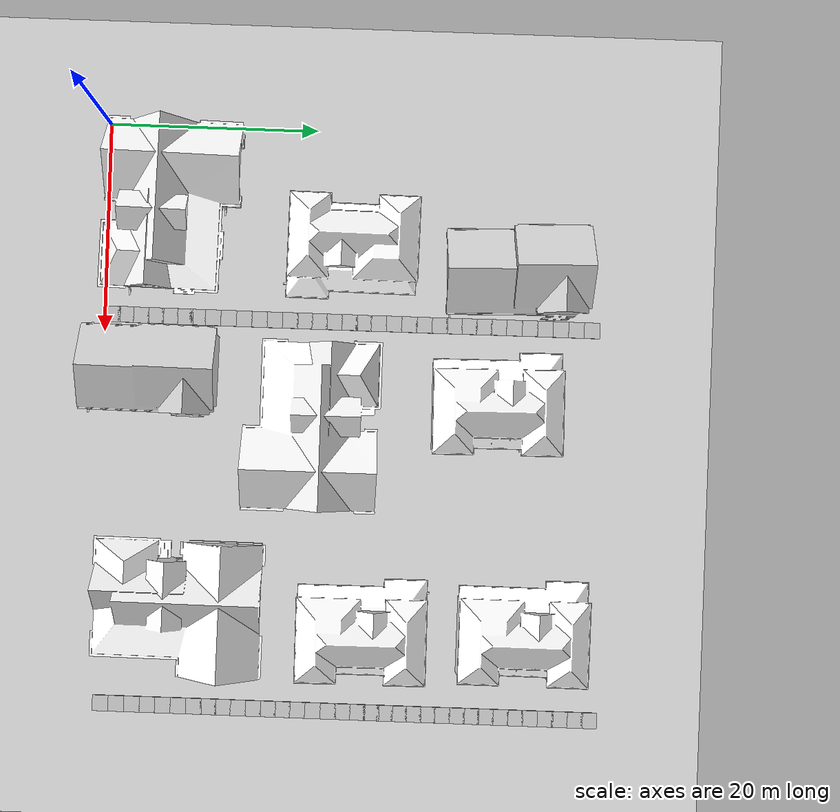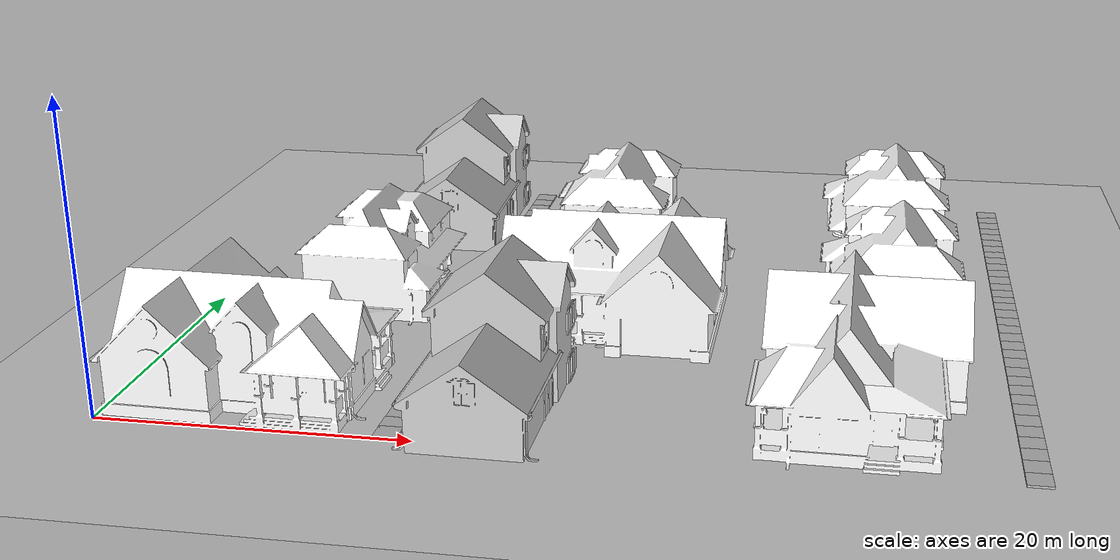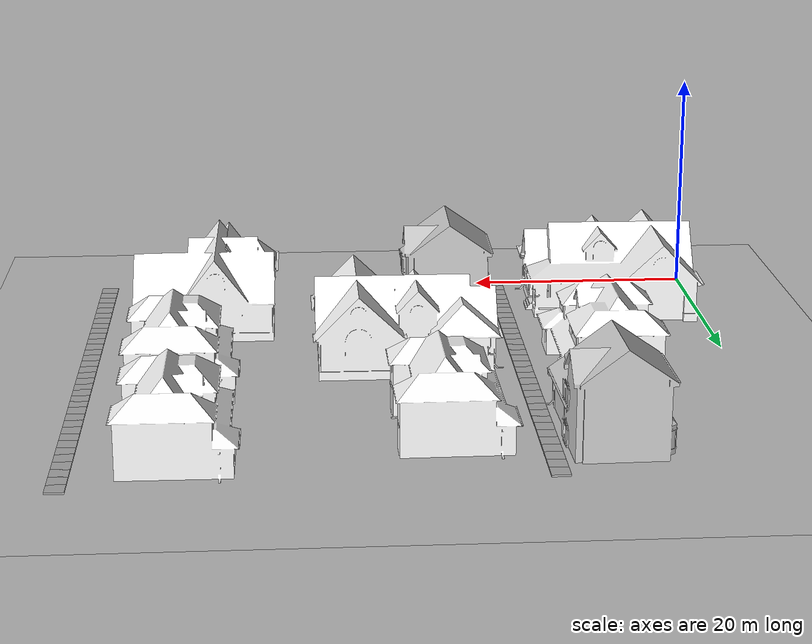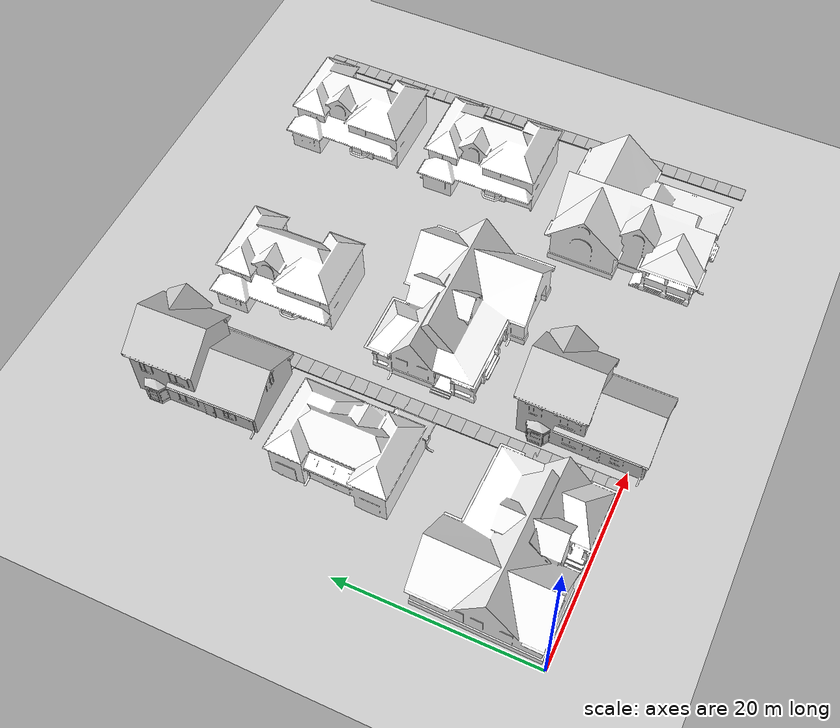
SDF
<sdf version="1.6">
 <world name="default">
  <model name="ground_plane">
   <pose>50 50 0 0 -0 0</pose>
   <static>1</static>
   <link name="link">
    <collision name="collision">
     <geometry><plane><normal>0 0 1</normal><size>100 100</size></plane></geometry>
     <surface>
      <contact><collide_bitmask>65535</collide_bitmask></contact>
      <friction><ode><mu>100</mu><mu2>50</mu2></ode></friction>
     </surface>
    </collision>
    <visual name="visual">
     <cast_shadows>0</cast_shadows>
     <geometry><plane><normal>0 0 1</normal><size>100 100</size></plane></geometry>
     <material>
      <script><uri>file://media/materials/scripts/gazebo.material</uri><name>Gazebo/Grey</name></script>
     </material>
    </visual>
   </link>
  </model>
  <model name="House 1">
   <static>1</static>
   <link name="link">
    <collision name="collision">
     <geometry><mesh><uri>model://house_1/meshes/house_1.dae</uri><scale>1.5 1.5 1.5</scale></mesh></geometry>
    </collision>
    <visual name="visual">
     <geometry><mesh><uri>model://house_1/meshes/house_1.dae</uri><scale>1.5 1.5 1.5</scale></mesh></geometry>
     <material>
      <script>
       <uri>model://house_1/materials/scripts</uri>
       <uri>model://house_1/materials/textures</uri>
       <name>House_1/Diffuse</name>
      </script>
      <shader type="normal_map_tangent_space"><normal_map>House_1_Normal.png</normal_map></shader>
     </material>
    </visual>
   </link>
   <pose>7.85395 6.03702 0 0 -0 3.12127</pose>
  </model>
  <model name="walkway_metal_straight">
   <static>1</static>
   <link name="link">
    <collision name="collision">
     <pose>0 0.762 0.076075 0 -0 0</pose>
     <geometry><box><size>1.524 1.524 0.15215</size></box></geometry>
    </collision>
    <visual name="visual">
     <geometry>
      <mesh><scale>0.001 0.001 0.001</scale><uri>model://walkway_metal_straight/meshes/mesh.obj</uri></mesh>
     </geometry>
    </visual>
   </link>
   <pose>18.2825 -0.072933 0 0 -0 0</pose>
  </model>
  <model name="walkway_metal_straight_0">
   <static>1</static>
   <link name="link">
    <collision name="collision">
     <pose>0 0.762 0.076075 0 -0 0</pose>
     <geometry><box><size>1.524 1.524 0.15215</size></box></geometry>
    </collision>
    <visual name="visual">
     <geometry>
      <mesh><scale>0.001 0.001 0.001</scale><uri>model://walkway_metal_straight/meshes/mesh.obj</uri></mesh>
     </geometry>
    </visual>
   </link>
   <pose>18.2758 1.21264 0 0 -0 0</pose>
  </model>
  <model name="walkway_metal_straight_1">
   <static>1</static>
   <link name="link">
    <collision name="collision">
     <pose>0 0.762 0.076075 0 -0 0</pose>
     <geometry><box><size>1.524 1.524 0.15215</size></box></geometry>
    </collision>
    <visual name="visual">
     <geometry>
      <mesh><scale>0.001 0.001 0.001</scale><uri>model://walkway_metal_straight/meshes/mesh.obj</uri></mesh>
     </geometry>
    </visual>
   </link>
   <pose>18.3018 2.69775 0 0 -0 0</pose>
  </model>
  <model name="walkway_metal_straight_2">
   <static>1</static>
   <link name="link">
    <collision name="collision">
     <pose>0 0.762 0.076075 0 -0 0</pose>
     <geometry><box><size>1.524 1.524 0.15215</size></box></geometry>
    </collision>
    <visual name="visual">
     <geometry>
      <mesh><scale>0.001 0.001 0.001</scale><uri>model://walkway_metal_straight/meshes/mesh.obj</uri></mesh>
     </geometry>
    </visual>
   </link>
   <pose>18.3024 4.11116 0 0 -0 0</pose>
  </model>
  <model name="walkway_metal_straight_3">
   <static>1</static>
   <link name="link">
    <collision name="collision">
     <pose>0 0.762 0.076075 0 -0 0</pose>
     <geometry><box><size>1.524 1.524 0.15215</size></box></geometry>
    </collision>
    <visual name="visual">
     <geometry>
      <mesh><scale>0.001 0.001 0.001</scale><uri>model://walkway_metal_straight/meshes/mesh.obj</uri></mesh>
     </geometry>
    </visual>
   </link>
   <pose>18.3048 5.48533 0 0 -0 0</pose>
  </model>
  <model name="walkway_metal_straight_4">
   <static>1</static>
   <link name="link">
    <collision name="collision">
     <pose>0 0.762 0.076075 0 -0 0</pose>
     <geometry><box><size>1.524 1.524 0.15215</size></box></geometry>
    </collision>
    <visual name="visual">
     <geometry>
      <mesh><scale>0.001 0.001 0.001</scale><uri>model://walkway_metal_straight/meshes/mesh.obj</uri></mesh>
     </geometry>
    </visual>
   </link>
   <pose>18.3241 6.94851 0 0 -0 0</pose>
  </model>
  <model name="walkway_metal_straight_5">
   <static>1</static>
   <link name="link">
    <collision name="collision">
     <pose>0 0.762 0.076075 0 -0 0</pose>
     <geometry><box><size>1.524 1.524 0.15215</size></box></geometry>
    </collision>
    <visual name="visual">
     <geometry>
      <mesh><scale>0.001 0.001 0.001</scale><uri>model://walkway_metal_straight/meshes/mesh.obj</uri></mesh>
     </geometry>
    </visual>
   </link>
   <pose>18.3171 8.13981 0 0 -0 0</pose>
  </model>
  <model name="walkway_metal_straight_6">
   <static>1</static>
   <link name="link">
    <collision name="collision">
     <pose>0 0.762 0.076075 0 -0 0</pose>
     <geometry><box><size>1.524 1.524 0.15215</size></box></geometry>
    </collision>
    <visual name="visual">
     <geometry>
      <mesh><scale>0.001 0.001 0.001</scale><uri>model://walkway_metal_straight/meshes/mesh.obj</uri></mesh>
     </geometry>
    </visual>
   </link>
   <pose>18.3157 9.63545 0 0 -0 0</pose>
  </model>
  <model name="walkway_metal_straight_7">
   <static>1</static>
   <link name="link">
    <collision name="collision">
     <pose>0 0.762 0.076075 0 -0 0</pose>
     <geometry><box><size>1.524 1.524 0.15215</size></box></geometry>
    </collision>
    <visual name="visual">
     <geometry>
      <mesh><scale>0.001 0.001 0.001</scale><uri>model://walkway_metal_straight/meshes/mesh.obj</uri></mesh>
     </geometry>
    </visual>
   </link>
   <pose>18.3179 11.1532 0 0 -0 0</pose>
  </model>
  <model name="walkway_metal_straight_8">
   <static>1</static>
   <link name="link">
    <collision name="collision">
     <pose>0 0.762 0.076075 0 -0 0</pose>
     <geometry><box><size>1.524 1.524 0.15215</size></box></geometry>
    </collision>
    <visual name="visual">
     <geometry>
      <mesh><scale>0.001 0.001 0.001</scale><uri>model://walkway_metal_straight/meshes/mesh.obj</uri></mesh>
     </geometry>
    </visual>
   </link>
   <pose>18.324 12.6444 0 0 -0 0</pose>
  </model>
  <model name="walkway_metal_straight_9">
   <static>1</static>
   <link name="link">
    <collision name="collision">
     <pose>0 0.762 0.076075 0 -0 0</pose>
     <geometry><box><size>1.524 1.524 0.15215</size></box></geometry>
    </collision>
    <visual name="visual">
     <geometry>
      <mesh><scale>0.001 0.001 0.001</scale><uri>model://walkway_metal_straight/meshes/mesh.obj</uri></mesh>
     </geometry>
    </visual>
   </link>
   <pose>18.3296 14.1195 0 0 -0 0</pose>
  </model>
  <model name="walkway_metal_straight_10">
   <static>1</static>
   <link name="link">
    <collision name="collision">
     <pose>0 0.762 0.076075 0 -0 0</pose>
     <geometry><box><size>1.524 1.524 0.15215</size></box></geometry>
    </collision>
    <visual name="visual">
     <geometry>
      <mesh><scale>0.001 0.001 0.001</scale><uri>model://walkway_metal_straight/meshes/mesh.obj</uri></mesh>
     </geometry>
    </visual>
   </link>
   <pose>18.3353 15.595 0 0 -0 0</pose>
  </model>
  <model name="walkway_metal_straight_11">
   <static>1</static>
   <link name="link">
    <collision name="collision">
     <pose>0 0.762 0.076075 0 -0 0</pose>
     <geometry><box><size>1.524 1.524 0.15215</size></box></geometry>
    </collision>
    <visual name="visual">
     <geometry>
      <mesh><scale>0.001 0.001 0.001</scale><uri>model://walkway_metal_straight/meshes/mesh.obj</uri></mesh>
     </geometry>
    </visual>
   </link>
   <pose>18.329 17.1047 0 0 -0 0</pose>
  </model>
  <model name="walkway_metal_straight_12">
   <static>1</static>
   <link name="link">
    <collision name="collision">
     <pose>0 0.762 0.076075 0 -0 0</pose>
     <geometry><box><size>1.524 1.524 0.15215</size></box></geometry>
    </collision>
    <visual name="visual">
     <geometry>
      <mesh><scale>0.001 0.001 0.001</scale><uri>model://walkway_metal_straight/meshes/mesh.obj</uri></mesh>
     </geometry>
    </visual>
   </link>
   <pose>18.3332 18.4995 0 0 -0 0</pose>
  </model>
  <model name="walkway_metal_straight_13">
   <static>1</static>
   <link name="link">
    <collision name="collision">
     <pose>0 0.762 0.076075 0 -0 0</pose>
     <geometry><box><size>1.524 1.524 0.15215</size></box></geometry>
    </collision>
    <visual name="visual">
     <geometry>
      <mesh><scale>0.001 0.001 0.001</scale><uri>model://walkway_metal_straight/meshes/mesh.obj</uri></mesh>
     </geometry>
    </visual>
   </link>
   <pose>18.338 19.9107 0 0 -0 0</pose>
  </model>
  <model name="walkway_metal_straight_14">
   <static>1</static>
   <link name="link">
    <collision name="collision">
     <pose>0 0.762 0.076075 0 -0 0</pose>
     <geometry><box><size>1.524 1.524 0.15215</size></box></geometry>
    </collision>
    <visual name="visual">
     <geometry>
      <mesh><scale>0.001 0.001 0.001</scale><uri>model://walkway_metal_straight/meshes/mesh.obj</uri></mesh>
     </geometry>
    </visual>
   </link>
   <pose>18.3372 21.3551 0 0 -0 0</pose>
  </model>
  <model name="walkway_metal_straight_15">
   <static>1</static>
   <link name="link">
    <collision name="collision">
     <pose>0 0.762 0.076075 0 -0 0</pose>
     <geometry><box><size>1.524 1.524 0.15215</size></box></geometry>
    </collision>
    <visual name="visual">
     <geometry>
      <mesh><scale>0.001 0.001 0.001</scale><uri>model://walkway_metal_straight/meshes/mesh.obj</uri></mesh>
     </geometry>
    </visual>
   </link>
   <pose>18.3337 22.8474 0 0 -0 0</pose>
  </model>
  <model name="walkway_metal_straight_16">
   <static>1</static>
   <link name="link">
    <collision name="collision">
     <pose>0 0.762 0.076075 0 -0 0</pose>
     <geometry><box><size>1.524 1.524 0.15215</size></box></geometry>
    </collision>
    <visual name="visual">
     <geometry>
      <mesh><scale>0.001 0.001 0.001</scale><uri>model://walkway_metal_straight/meshes/mesh.obj</uri></mesh>
     </geometry>
    </visual>
   </link>
   <pose>18.3477 24.1951 0 0 -0 0</pose>
  </model>
  <model name="walkway_metal_straight_17">
   <static>1</static>
   <link name="link">
    <collision name="collision">
     <pose>0 0.762 0.076075 0 -0 0</pose>
     <geometry><box><size>1.524 1.524 0.15215</size></box></geometry>
    </collision>
    <visual name="visual">
     <geometry>
      <mesh><scale>0.001 0.001 0.001</scale><uri>model://walkway_metal_straight/meshes/mesh.obj</uri></mesh>
     </geometry>
    </visual>
   </link>
   <pose>18.345 25.6384 0 0 -0 0</pose>
  </model>
  <model name="walkway_metal_straight_18">
   <static>1</static>
   <link name="link">
    <collision name="collision">
     <pose>0 0.762 0.076075 0 -0 0</pose>
     <geometry><box><size>1.524 1.524 0.15215</size></box></geometry>
    </collision>
    <visual name="visual">
     <geometry>
      <mesh><scale>0.001 0.001 0.001</scale><uri>model://walkway_metal_straight/meshes/mesh.obj</uri></mesh>
     </geometry>
    </visual>
   </link>
   <pose>18.3364 27.1272 0 0 -0 0</pose>
  </model>
  <model name="walkway_metal_straight_19">
   <static>1</static>
   <link name="link">
    <collision name="collision">
     <pose>0 0.762 0.076075 0 -0 0</pose>
     <geometry><box><size>1.524 1.524 0.15215</size></box></geometry>
    </collision>
    <visual name="visual">
     <geometry>
      <mesh><scale>0.001 0.001 0.001</scale><uri>model://walkway_metal_straight/meshes/mesh.obj</uri></mesh>
     </geometry>
    </visual>
   </link>
   <pose>18.3402 28.6079 0 0 -0 0</pose>
  </model>
  <model name="walkway_metal_straight_20">
   <static>1</static>
   <link name="link">
    <collision name="collision">
     <pose>0 0.762 0.076075 0 -0 0</pose>
     <geometry><box><size>1.524 1.524 0.15215</size></box></geometry>
    </collision>
    <visual name="visual">
     <geometry>
      <mesh><scale>0.001 0.001 0.001</scale><uri>model://walkway_metal_straight/meshes/mesh.obj</uri></mesh>
     </geometry>
    </visual>
   </link>
   <pose>18.3445 30.0526 0 0 -0 0</pose>
  </model>
  <model name="walkway_metal_straight_21">
   <static>1</static>
   <link name="link">
    <collision name="collision">
     <pose>0 0.762 0.076075 0 -0 0</pose>
     <geometry><box><size>1.524 1.524 0.15215</size></box></geometry>
    </collision>
    <visual name="visual">
     <geometry>
      <mesh><scale>0.001 0.001 0.001</scale><uri>model://walkway_metal_straight/meshes/mesh.obj</uri></mesh>
     </geometry>
    </visual>
   </link>
   <pose>18.337 31.5447 0 0 -0 0</pose>
  </model>
  <model name="walkway_metal_straight_22">
   <static>1</static>
   <link name="link">
    <collision name="collision">
     <pose>0 0.762 0.076075 0 -0 0</pose>
     <geometry><box><size>1.524 1.524 0.15215</size></box></geometry>
    </collision>
    <visual name="visual">
     <geometry>
      <mesh><scale>0.001 0.001 0.001</scale><uri>model://walkway_metal_straight/meshes/mesh.obj</uri></mesh>
     </geometry>
    </visual>
   </link>
   <pose>18.3409 32.9529 0 0 -0 0</pose>
  </model>
  <model name="walkway_metal_straight_23">
   <static>1</static>
   <link name="link">
    <collision name="collision">
     <pose>0 0.762 0.076075 0 -0 0</pose>
     <geometry><box><size>1.524 1.524 0.15215</size></box></geometry>
    </collision>
    <visual name="visual">
     <geometry>
      <mesh><scale>0.001 0.001 0.001</scale><uri>model://walkway_metal_straight/meshes/mesh.obj</uri></mesh>
     </geometry>
    </visual>
   </link>
   <pose>18.3386 34.3966 0 0 -0 0</pose>
  </model>
  <model name="walkway_metal_straight_24">
   <static>1</static>
   <link name="link">
    <collision name="collision">
     <pose>0 0.762 0.076075 0 -0 0</pose>
     <geometry><box><size>1.524 1.524 0.15215</size></box></geometry>
    </collision>
    <visual name="visual">
     <geometry>
      <mesh><scale>0.001 0.001 0.001</scale><uri>model://walkway_metal_straight/meshes/mesh.obj</uri></mesh>
     </geometry>
    </visual>
   </link>
   <pose>18.3354 35.8409 0 0 -0 0</pose>
  </model>
  <model name="walkway_metal_straight_25">
   <static>1</static>
   <link name="link">
    <collision name="collision">
     <pose>0 0.762 0.076075 0 -0 0</pose>
     <geometry><box><size>1.524 1.524 0.15215</size></box></geometry>
    </collision>
    <visual name="visual">
     <geometry>
      <mesh><scale>0.001 0.001 0.001</scale><uri>model://walkway_metal_straight/meshes/mesh.obj</uri></mesh>
     </geometry>
    </visual>
   </link>
   <pose>18.3245 37.2528 0 0 -0 0</pose>
  </model>
  <model name="walkway_metal_straight_26">
   <static>1</static>
   <link name="link">
    <collision name="collision">
     <pose>0 0.762 0.076075 0 -0 0</pose>
     <geometry><box><size>1.524 1.524 0.15215</size></box></geometry>
    </collision>
    <visual name="visual">
     <geometry>
      <mesh><scale>0.001 0.001 0.001</scale><uri>model://walkway_metal_straight/meshes/mesh.obj</uri></mesh>
     </geometry>
    </visual>
   </link>
   <pose>18.3287 38.7686 0 0 -0 0</pose>
  </model>
  <model name="walkway_metal_straight_27">
   <static>1</static>
   <link name="link">
    <collision name="collision">
     <pose>0 0.762 0.076075 0 -0 0</pose>
     <geometry><box><size>1.524 1.524 0.15215</size></box></geometry>
    </collision>
    <visual name="visual">
     <geometry>
      <mesh><scale>0.001 0.001 0.001</scale><uri>model://walkway_metal_straight/meshes/mesh.obj</uri></mesh>
     </geometry>
    </visual>
   </link>
   <pose>18.3226 40.2752 0 0 -0 0</pose>
  </model>
  <model name="walkway_metal_straight_28">
   <static>1</static>
   <link name="link">
    <collision name="collision">
     <pose>0 0.762 0.076075 0 -0 0</pose>
     <geometry><box><size>1.524 1.524 0.15215</size></box></geometry>
    </collision>
    <visual name="visual">
     <geometry>
      <mesh><scale>0.001 0.001 0.001</scale><uri>model://walkway_metal_straight/meshes/mesh.obj</uri></mesh>
     </geometry>
    </visual>
   </link>
   <pose>18.3267 41.7464 0 0 -0 0</pose>
  </model>
  <model name="walkway_metal_straight_29">
   <static>1</static>
   <link name="link">
    <collision name="collision">
     <pose>0 0.762 0.076075 0 -0 0</pose>
     <geometry><box><size>1.524 1.524 0.15215</size></box></geometry>
    </collision>
    <visual name="visual">
     <geometry>
      <mesh><scale>0.001 0.001 0.001</scale><uri>model://walkway_metal_straight/meshes/mesh.obj</uri></mesh>
     </geometry>
    </visual>
   </link>
   <pose>18.331 43.2478 0 0 -0 0</pose>
  </model>
  <model name="walkway_metal_straight_30">
   <static>1</static>
   <link name="link">
    <collision name="collision">
     <pose>0 0.762 0.076075 0 -0 0</pose>
     <geometry><box><size>1.524 1.524 0.15215</size></box></geometry>
    </collision>
    <visual name="visual">
     <geometry>
      <mesh><scale>0.001 0.001 0.001</scale><uri>model://walkway_metal_straight/meshes/mesh.obj</uri></mesh>
     </geometry>
    </visual>
   </link>
   <pose>18.3351 44.7496 0 0 -0 0</pose>
  </model>
  <model name="walkway_metal_straight_31">
   <static>1</static>
   <link name="link">
    <collision name="collision">
     <pose>0 0.762 0.076075 0 -0 0</pose>
     <geometry><box><size>1.524 1.524 0.15215</size></box></geometry>
    </collision>
    <visual name="visual">
     <geometry>
      <mesh><scale>0.001 0.001 0.001</scale><uri>model://walkway_metal_straight/meshes/mesh.obj</uri></mesh>
     </geometry>
    </visual>
   </link>
   <pose>18.3385 46.2534 0 0 -0 0</pose>
  </model>
  <model name="House 2">
   <static>1</static>
   <link name="link">
    <collision name="collision">
     <geometry><mesh><uri>model://house_2/meshes/house_2.dae</uri><scale>1.5 1.5 1.5</scale></mesh></geometry>
    </collision>
    <visual name="visual">
     <geometry><mesh><uri>model://house_2/meshes/house_2.dae</uri><scale>1.5 1.5 1.5</scale></mesh></geometry>
     <material>
      <script>
       <uri>model://house_2/materials/scripts</uri>
       <uri>model://house_2/materials/textures</uri>
       <uri>model://house_1/materials/textures</uri>
       <name>House_2/Diffuse</name>
      </script>
      <shader type="normal_map_tangent_space">
       <normal_map>model://house_1/materials/textures/House_1_Normal.png</normal_map>
      </shader>
     </material>
    </visual>
   </link>
   <pose>10.7578 24.6942 0 0 0 -1.58213</pose>
  </model>
  <model name="House 3">
   <static>1</static>
   <link name="link">
    <collision name="collision">
     <geometry><mesh><uri>model://house_3/meshes/house_3.dae</uri><scale>1.5 1.5 1.5</scale></mesh></geometry>
    </collision>
    <visual name="visual">
     <geometry><mesh><uri>model://house_3/meshes/house_3.dae</uri><scale>1.5 1.5 1.5</scale></mesh></geometry>
     <material>
      <script>
       <uri>model://house_3/materials/scripts</uri>
       <uri>model://house_3/materials/textures</uri>
       <uri>model://house_1/materials/textures</uri>
       <name>House_3/Diffuse</name>
      </script>
      <shader type="normal_map_tangent_space">
       <normal_map>model://house_1/materials/textures/House_1_Normal.png</normal_map>
      </shader>
     </material>
    </visual>
   </link>
   <pose>13.2913 38.655 0 0 0 -1.54825</pose>
  </model>
  <model name="House 2_2">
   <static>1</static>
   <link name="link">
    <collision name="collision">
     <geometry><mesh><uri>model://house_2/meshes/house_2.dae</uri><scale>1.5 1.5 1.5</scale></mesh></geometry>
    </collision>
    <visual name="visual">
     <geometry><mesh><uri>model://house_2/meshes/house_2.dae</uri><scale>1.5 1.5 1.5</scale></mesh></geometry>
     <material>
      <script>
       <uri>model://house_2/materials/scripts</uri>
       <uri>model://house_2/materials/textures</uri>
       <uri>model://house_1/materials/textures</uri>
       <name>House_2/Diffuse</name>
      </script>
      <shader type="normal_map_tangent_space">
       <normal_map>model://house_1/materials/textures/House_1_Normal.png</normal_map>
      </shader>
     </material>
    </visual>
   </link>
   <pose>26.5207 36.7571 0 0 -0 1.58143</pose>
  </model>
  <model name="House 1_3">
   <static>1</static>
   <link name="link">
    <collision name="collision">
     <geometry><mesh><uri>model://house_1/meshes/house_1.dae</uri><scale>1.5 1.5 1.5</scale></mesh></geometry>
    </collision>
    <visual name="visual">
     <geometry><mesh><uri>model://house_1/meshes/house_1.dae</uri><scale>1.5 1.5 1.5</scale></mesh></geometry>
     <material>
      <script>
       <uri>model://house_1/materials/scripts</uri>
       <uri>model://house_1/materials/textures</uri>
       <name>House_1/Diffuse</name>
      </script>
      <shader type="normal_map_tangent_space"><normal_map>House_1_Normal.png</normal_map></shader>
     </material>
    </visual>
   </link>
   <pose>28.6932 20.6823 0 0 -0 0</pose>
  </model>
  <model name="House 3_1">
   <static>1</static>
   <link name="link">
    <collision name="collision">
     <geometry><mesh><uri>model://house_3/meshes/house_3.dae</uri><scale>1.5 1.5 1.5</scale></mesh></geometry>
    </collision>
    <visual name="visual">
     <geometry><mesh><uri>model://house_3/meshes/house_3.dae</uri><scale>1.5 1.5 1.5</scale></mesh></geometry>
     <material>
      <script>
       <uri>model://house_3/materials/scripts</uri>
       <uri>model://house_3/materials/textures</uri>
       <uri>model://house_1/materials/textures</uri>
       <name>House_3/Diffuse</name>
      </script>
      <shader type="normal_map_tangent_space">
       <normal_map>model://house_1/materials/textures/House_1_Normal.png</normal_map>
      </shader>
     </material>
    </visual>
   </link>
   <pose>23.5637 4.27026 0 0 0 -1.58351</pose>
  </model>
  <model name="House 1_4">
   <static>1</static>
   <link name="link">
    <collision name="collision">
     <geometry><mesh><uri>model://house_1/meshes/house_1.dae</uri><scale>1.5 1.5 1.5</scale></mesh></geometry>
    </collision>
    <visual name="visual">
     <geometry><mesh><uri>model://house_1/meshes/house_1.dae</uri><scale>1.5 1.5 1.5</scale></mesh></geometry>
     <material>
      <script>
       <uri>model://house_1/materials/scripts</uri>
       <uri>model://house_1/materials/textures</uri>
       <name>House_1/Diffuse</name>
      </script>
      <shader type="normal_map_tangent_space"><normal_map>House_1_Normal.png</normal_map></shader>
     </material>
    </visual>
   </link>
   <pose>45.5786 8.52503 0 0 -0 1.56362</pose>
  </model>
  <model name="House 2_3">
   <static>1</static>
   <link name="link">
    <collision name="collision">
     <geometry><mesh><uri>model://house_2/meshes/house_2.dae</uri><scale>1.5 1.5 1.5</scale></mesh></geometry>
    </collision>
    <visual name="visual">
     <geometry><mesh><uri>model://house_2/meshes/house_2.dae</uri><scale>1.5 1.5 1.5</scale></mesh></geometry>
     <material>
      <script>
       <uri>model://house_2/materials/scripts</uri>
       <uri>model://house_2/materials/textures</uri>
       <uri>model://house_1/materials/textures</uri>
       <name>House_2/Diffuse</name>
      </script>
      <shader type="normal_map_tangent_space">
       <normal_map>model://house_1/materials/textures/House_1_Normal.png</normal_map>
      </shader>
     </material>
    </visual>
   </link>
   <pose>48.3315 24.6216 0 0 -0 1.57463</pose>
  </model>
  <model name="walkway_metal_straight_68">
   <static>1</static>
   <link name="link">
    <collision name="collision">
     <pose>0 0.762 0.076075 0 -0 0</pose>
     <geometry><box><size>1.524 1.524 0.15215</size></box></geometry>
    </collision>
    <visual name="visual">
     <geometry>
      <mesh><scale>0.001 0.001 0.001</scale><uri>model://walkway_metal_straight/meshes/mesh.obj</uri></mesh>
     </geometry>
    </visual>
   </link>
   <pose>55.8567 -0.00921 0 0 -0 0</pose>
  </model>
  <model name="walkway_metal_straight_69">
   <static>1</static>
   <link name="link">
    <collision name="collision">
     <pose>0 0.762 0.076075 0 -0 0</pose>
     <geometry><box><size>1.524 1.524 0.15215</size></box></geometry>
    </collision>
    <visual name="visual">
     <geometry>
      <mesh><scale>0.001 0.001 0.001</scale><uri>model://walkway_metal_straight/meshes/mesh.obj</uri></mesh>
     </geometry>
    </visual>
   </link>
   <pose>55.8598 1.5092 0 0 -0 0</pose>
  </model>
  <model name="walkway_metal_straight_70">
   <static>1</static>
   <link name="link">
    <collision name="collision">
     <pose>0 0.762 0.076075 0 -0 0</pose>
     <geometry><box><size>1.524 1.524 0.15215</size></box></geometry>
    </collision>
    <visual name="visual">
     <geometry>
      <mesh><scale>0.001 0.001 0.001</scale><uri>model://walkway_metal_straight/meshes/mesh.obj</uri></mesh>
     </geometry>
    </visual>
   </link>
   <pose>55.865 3.02767 0 0 -0 0</pose>
  </model>
  <model name="walkway_metal_straight_71">
   <static>1</static>
   <link name="link">
    <collision name="collision">
     <pose>0 0.762 0.076075 0 -0 0</pose>
     <geometry><box><size>1.524 1.524 0.15215</size></box></geometry>
    </collision>
    <visual name="visual">
     <geometry>
      <mesh><scale>0.001 0.001 0.001</scale><uri>model://walkway_metal_straight/meshes/mesh.obj</uri></mesh>
     </geometry>
    </visual>
   </link>
   <pose>55.8681 4.50666 0 0 -0 0</pose>
  </model>
  <model name="walkway_metal_straight_72">
   <static>1</static>
   <link name="link">
    <collision name="collision">
     <pose>0 0.762 0.076075 0 -0 0</pose>
     <geometry><box><size>1.524 1.524 0.15215</size></box></geometry>
    </collision>
    <visual name="visual">
     <geometry>
      <mesh><scale>0.001 0.001 0.001</scale><uri>model://walkway_metal_straight/meshes/mesh.obj</uri></mesh>
     </geometry>
    </visual>
   </link>
   <pose>55.8728 6.00541 0 0 -0 0</pose>
  </model>
  <model name="walkway_metal_straight_73">
   <static>1</static>
   <link name="link">
    <collision name="collision">
     <pose>0 0.762 0.076075 0 -0 0</pose>
     <geometry><box><size>1.524 1.524 0.15215</size></box></geometry>
    </collision>
    <visual name="visual">
     <geometry>
      <mesh><scale>0.001 0.001 0.001</scale><uri>model://walkway_metal_straight/meshes/mesh.obj</uri></mesh>
     </geometry>
    </visual>
   </link>
   <pose>55.8699 7.50286 0 0 -0 0</pose>
  </model>
  <model name="walkway_metal_straight_74">
   <static>1</static>
   <link name="link">
    <collision name="collision">
     <pose>0 0.762 0.076075 0 -0 0</pose>
     <geometry><box><size>1.524 1.524 0.15215</size></box></geometry>
    </collision>
    <visual name="visual">
     <geometry>
      <mesh><scale>0.001 0.001 0.001</scale><uri>model://walkway_metal_straight/meshes/mesh.obj</uri></mesh>
     </geometry>
    </visual>
   </link>
   <pose>55.8745 9.02149 0 0 -0 0</pose>
  </model>
  <model name="walkway_metal_straight_75">
   <static>1</static>
   <link name="link">
    <collision name="collision">
     <pose>0 0.762 0.076075 0 -0 0</pose>
     <geometry><box><size>1.524 1.524 0.15215</size></box></geometry>
    </collision>
    <visual name="visual">
     <geometry>
      <mesh><scale>0.001 0.001 0.001</scale><uri>model://walkway_metal_straight/meshes/mesh.obj</uri></mesh>
     </geometry>
    </visual>
   </link>
   <pose>55.8782 10.4219 0 0 -0 0</pose>
  </model>
  <model name="walkway_metal_straight_76">
   <static>1</static>
   <link name="link">
    <collision name="collision">
     <pose>0 0.762 0.076075 0 -0 0</pose>
     <geometry><box><size>1.524 1.524 0.15215</size></box></geometry>
    </collision>
    <visual name="visual">
     <geometry>
      <mesh><scale>0.001 0.001 0.001</scale><uri>model://walkway_metal_straight/meshes/mesh.obj</uri></mesh>
     </geometry>
    </visual>
   </link>
   <pose>55.8813 11.8419 0 0 -0 0</pose>
  </model>
  <model name="walkway_metal_straight_77">
   <static>1</static>
   <link name="link">
    <collision name="collision">
     <pose>0 0.762 0.076075 0 -0 0</pose>
     <geometry><box><size>1.524 1.524 0.15215</size></box></geometry>
    </collision>
    <visual name="visual">
     <geometry>
      <mesh><scale>0.001 0.001 0.001</scale><uri>model://walkway_metal_straight/meshes/mesh.obj</uri></mesh>
     </geometry>
    </visual>
   </link>
   <pose>55.8925 13.2803 0 0 -0 0</pose>
  </model>
  <model name="walkway_metal_straight_78">
   <static>1</static>
   <link name="link">
    <collision name="collision">
     <pose>0 0.762 0.076075 0 -0 0</pose>
     <geometry><box><size>1.524 1.524 0.15215</size></box></geometry>
    </collision>
    <visual name="visual">
     <geometry>
      <mesh><scale>0.001 0.001 0.001</scale><uri>model://walkway_metal_straight/meshes/mesh.obj</uri></mesh>
     </geometry>
    </visual>
   </link>
   <pose>55.8966 14.7592 0 0 -0 0</pose>
  </model>
  <model name="walkway_metal_straight_79">
   <static>1</static>
   <link name="link">
    <collision name="collision">
     <pose>0 0.762 0.076075 0 -0 0</pose>
     <geometry><box><size>1.524 1.524 0.15215</size></box></geometry>
    </collision>
    <visual name="visual">
     <geometry>
      <mesh><scale>0.001 0.001 0.001</scale><uri>model://walkway_metal_straight/meshes/mesh.obj</uri></mesh>
     </geometry>
    </visual>
   </link>
   <pose>55.9008 16.1793 0 0 -0 0</pose>
  </model>
  <model name="walkway_metal_straight_80">
   <static>1</static>
   <link name="link">
    <collision name="collision">
     <pose>0 0.762 0.076075 0 -0 0</pose>
     <geometry><box><size>1.524 1.524 0.15215</size></box></geometry>
    </collision>
    <visual name="visual">
     <geometry>
      <mesh><scale>0.001 0.001 0.001</scale><uri>model://walkway_metal_straight/meshes/mesh.obj</uri></mesh>
     </geometry>
    </visual>
   </link>
   <pose>55.9039 17.5794 0 0 -0 0</pose>
  </model>
  <model name="walkway_metal_straight_81">
   <static>1</static>
   <link name="link">
    <collision name="collision">
     <pose>0 0.762 0.076075 0 -0 0</pose>
     <geometry><box><size>1.524 1.524 0.15215</size></box></geometry>
    </collision>
    <visual name="visual">
     <geometry>
      <mesh><scale>0.001 0.001 0.001</scale><uri>model://walkway_metal_straight/meshes/mesh.obj</uri></mesh>
     </geometry>
    </visual>
   </link>
   <pose>55.9091 19.019 0 0 -0 0</pose>
  </model>
  <model name="walkway_metal_straight_82">
   <static>1</static>
   <link name="link">
    <collision name="collision">
     <pose>0 0.762 0.076075 0 -0 0</pose>
     <geometry><box><size>1.524 1.524 0.15215</size></box></geometry>
    </collision>
    <visual name="visual">
     <geometry>
      <mesh><scale>0.001 0.001 0.001</scale><uri>model://walkway_metal_straight/meshes/mesh.obj</uri></mesh>
     </geometry>
    </visual>
   </link>
   <pose>55.9122 20.4979 0 0 -0 0</pose>
  </model>
  <model name="walkway_metal_straight_83">
   <static>1</static>
   <link name="link">
    <collision name="collision">
     <pose>0 0.762 0.076075 0 -0 0</pose>
     <geometry><box><size>1.524 1.524 0.15215</size></box></geometry>
    </collision>
    <visual name="visual">
     <geometry>
      <mesh><scale>0.001 0.001 0.001</scale><uri>model://walkway_metal_straight/meshes/mesh.obj</uri></mesh>
     </geometry>
    </visual>
   </link>
   <pose>55.9186 21.99 0 0 -0 0</pose>
  </model>
  <model name="walkway_metal_straight_84">
   <static>1</static>
   <link name="link">
    <collision name="collision">
     <pose>0 0.762 0.076075 0 -0 0</pose>
     <geometry><box><size>1.524 1.524 0.15215</size></box></geometry>
    </collision>
    <visual name="visual">
     <geometry>
      <mesh><scale>0.001 0.001 0.001</scale><uri>model://walkway_metal_straight/meshes/mesh.obj</uri></mesh>
     </geometry>
    </visual>
   </link>
   <pose>55.9228 23.3699 0 0 -0 0</pose>
  </model>
  <model name="walkway_metal_straight_85">
   <static>1</static>
   <link name="link">
    <collision name="collision">
     <pose>0 0.762 0.076075 0 -0 0</pose>
     <geometry><box><size>1.524 1.524 0.15215</size></box></geometry>
    </collision>
    <visual name="visual">
     <geometry>
      <mesh><scale>0.001 0.001 0.001</scale><uri>model://walkway_metal_straight/meshes/mesh.obj</uri></mesh>
     </geometry>
    </visual>
   </link>
   <pose>55.9264 24.8292 0 0 -0 0</pose>
  </model>
  <model name="walkway_metal_straight_86">
   <static>1</static>
   <link name="link">
    <collision name="collision">
     <pose>0 0.762 0.076075 0 -0 0</pose>
     <geometry><box><size>1.524 1.524 0.15215</size></box></geometry>
    </collision>
    <visual name="visual">
     <geometry>
      <mesh><scale>0.001 0.001 0.001</scale><uri>model://walkway_metal_straight/meshes/mesh.obj</uri></mesh>
     </geometry>
    </visual>
   </link>
   <pose>55.9301 26.1899 0 0 -0 0</pose>
  </model>
  <model name="walkway_metal_straight_87">
   <static>1</static>
   <link name="link">
    <collision name="collision">
     <pose>0 0.762 0.076075 0 -0 0</pose>
     <geometry><box><size>1.524 1.524 0.15215</size></box></geometry>
    </collision>
    <visual name="visual">
     <geometry>
      <mesh><scale>0.001 0.001 0.001</scale><uri>model://walkway_metal_straight/meshes/mesh.obj</uri></mesh>
     </geometry>
    </visual>
   </link>
   <pose>55.9337 27.4912 0 0 -0 0</pose>
  </model>
  <model name="walkway_metal_straight_88">
   <static>1</static>
   <link name="link">
    <collision name="collision">
     <pose>0 0.762 0.076075 0 -0 0</pose>
     <geometry><box><size>1.524 1.524 0.15215</size></box></geometry>
    </collision>
    <visual name="visual">
     <geometry>
      <mesh><scale>0.001 0.001 0.001</scale><uri>model://walkway_metal_straight/meshes/mesh.obj</uri></mesh>
     </geometry>
    </visual>
   </link>
   <pose>55.9378 28.8519 0 0 -0 0</pose>
  </model>
  <model name="walkway_metal_straight_89">
   <static>1</static>
   <link name="link">
    <collision name="collision">
     <pose>0 0.762 0.076075 0 -0 0</pose>
     <geometry><box><size>1.524 1.524 0.15215</size></box></geometry>
    </collision>
    <visual name="visual">
     <geometry>
      <mesh><scale>0.001 0.001 0.001</scale><uri>model://walkway_metal_straight/meshes/mesh.obj</uri></mesh>
     </geometry>
    </visual>
   </link>
   <pose>55.941 30.2516 0 0 -0 0</pose>
  </model>
  <model name="walkway_metal_straight_90">
   <static>1</static>
   <link name="link">
    <collision name="collision">
     <pose>0 0.762 0.076075 0 -0 0</pose>
     <geometry><box><size>1.524 1.524 0.15215</size></box></geometry>
    </collision>
    <visual name="visual">
     <geometry>
      <mesh><scale>0.001 0.001 0.001</scale><uri>model://walkway_metal_straight/meshes/mesh.obj</uri></mesh>
     </geometry>
    </visual>
   </link>
   <pose>55.9446 31.5923 0 0 -0 0</pose>
  </model>
  <model name="walkway_metal_straight_91">
   <static>1</static>
   <link name="link">
    <collision name="collision">
     <pose>0 0.762 0.076075 0 -0 0</pose>
     <geometry><box><size>1.524 1.524 0.15215</size></box></geometry>
    </collision>
    <visual name="visual">
     <geometry>
      <mesh><scale>0.001 0.001 0.001</scale><uri>model://walkway_metal_straight/meshes/mesh.obj</uri></mesh>
     </geometry>
    </visual>
   </link>
   <pose>55.9493 33.0123 0 0 -0 0</pose>
  </model>
  <model name="walkway_metal_straight_92">
   <static>1</static>
   <link name="link">
    <collision name="collision">
     <pose>0 0.762 0.076075 0 -0 0</pose>
     <geometry><box><size>1.524 1.524 0.15215</size></box></geometry>
    </collision>
    <visual name="visual">
     <geometry>
      <mesh><scale>0.001 0.001 0.001</scale><uri>model://walkway_metal_straight/meshes/mesh.obj</uri></mesh>
     </geometry>
    </visual>
   </link>
   <pose>55.9459 34.4563 0 0 -0 0</pose>
  </model>
  <model name="walkway_metal_straight_93">
   <static>1</static>
   <link name="link">
    <collision name="collision">
     <pose>0 0.762 0.076075 0 -0 0</pose>
     <geometry><box><size>1.524 1.524 0.15215</size></box></geometry>
    </collision>
    <visual name="visual">
     <geometry>
      <mesh><scale>0.001 0.001 0.001</scale><uri>model://walkway_metal_straight/meshes/mesh.obj</uri></mesh>
     </geometry>
    </visual>
   </link>
   <pose>55.9511 35.8362 0 0 -0 0</pose>
  </model>
  <model name="walkway_metal_straight_94">
   <static>1</static>
   <link name="link">
    <collision name="collision">
     <pose>0 0.762 0.076075 0 -0 0</pose>
     <geometry><box><size>1.524 1.524 0.15215</size></box></geometry>
    </collision>
    <visual name="visual">
     <geometry>
      <mesh><scale>0.001 0.001 0.001</scale><uri>model://walkway_metal_straight/meshes/mesh.obj</uri></mesh>
     </geometry>
    </visual>
   </link>
   <pose>55.9548 37.2167 0 0 -0 0</pose>
  </model>
  <model name="walkway_metal_straight_95">
   <static>1</static>
   <link name="link">
    <collision name="collision">
     <pose>0 0.762 0.076075 0 -0 0</pose>
     <geometry><box><size>1.524 1.524 0.15215</size></box></geometry>
    </collision>
    <visual name="visual">
     <geometry>
      <mesh><scale>0.001 0.001 0.001</scale><uri>model://walkway_metal_straight/meshes/mesh.obj</uri></mesh>
     </geometry>
    </visual>
   </link>
   <pose>55.9579 38.6564 0 0 -0 0</pose>
  </model>
  <model name="walkway_metal_straight_96">
   <static>1</static>
   <link name="link">
    <collision name="collision">
     <pose>0 0.762 0.076075 0 -0 0</pose>
     <geometry><box><size>1.524 1.524 0.15215</size></box></geometry>
    </collision>
    <visual name="visual">
     <geometry>
      <mesh><scale>0.001 0.001 0.001</scale><uri>model://walkway_metal_straight/meshes/mesh.obj</uri></mesh>
     </geometry>
    </visual>
   </link>
   <pose>55.9626 40.0759 0 0 -0 0</pose>
  </model>
  <model name="walkway_metal_straight_97">
   <static>1</static>
   <link name="link">
    <collision name="collision">
     <pose>0 0.762 0.076075 0 -0 0</pose>
     <geometry><box><size>1.524 1.524 0.15215</size></box></geometry>
    </collision>
    <visual name="visual">
     <geometry>
      <mesh><scale>0.001 0.001 0.001</scale><uri>model://walkway_metal_straight/meshes/mesh.obj</uri></mesh>
     </geometry>
    </visual>
   </link>
   <pose>55.9662 41.4767 0 0 -0 0</pose>
  </model>
  <model name="walkway_metal_straight_98">
   <static>1</static>
   <link name="link">
    <collision name="collision">
     <pose>0 0.762 0.076075 0 -0 0</pose>
     <geometry><box><size>1.524 1.524 0.15215</size></box></geometry>
    </collision>
    <visual name="visual">
     <geometry>
      <mesh><scale>0.001 0.001 0.001</scale><uri>model://walkway_metal_straight/meshes/mesh.obj</uri></mesh>
     </geometry>
    </visual>
   </link>
   <pose>55.9696 42.9971 0 0 -0 0</pose>
  </model>
  <model name="walkway_metal_straight_99">
   <static>1</static>
   <link name="link">
    <collision name="collision">
     <pose>0 0.762 0.076075 0 -0 0</pose>
     <geometry><box><size>1.524 1.524 0.15215</size></box></geometry>
    </collision>
    <visual name="visual">
     <geometry>
      <mesh><scale>0.001 0.001 0.001</scale><uri>model://walkway_metal_straight/meshes/mesh.obj</uri></mesh>
     </geometry>
    </visual>
   </link>
   <pose>55.9732 44.3776 0 0 -0 0</pose>
  </model>
  <model name="walkway_metal_straight_100">
   <static>1</static>
   <link name="link">
    <collision name="collision">
     <pose>0 0.762 0.076075 0 -0 0</pose>
     <geometry><box><size>1.524 1.524 0.15215</size></box></geometry>
    </collision>
    <visual name="visual">
     <geometry>
      <mesh><scale>0.001 0.001 0.001</scale><uri>model://walkway_metal_straight/meshes/mesh.obj</uri></mesh>
     </geometry>
    </visual>
   </link>
   <pose>55.9763 45.8371 0 0 -0 0</pose>
  </model>
  <model name="walkway_metal_straight_101">
   <static>1</static>
   <link name="link">
    <collision name="collision">
     <pose>0 0.762 0.076075 0 -0 0</pose>
     <geometry><box><size>1.524 1.524 0.15215</size></box></geometry>
    </collision>
    <visual name="visual">
     <geometry>
      <mesh><scale>0.001 0.001 0.001</scale><uri>model://walkway_metal_straight/meshes/mesh.obj</uri></mesh>
     </geometry>
    </visual>
   </link>
   <pose>55.981 47.2176 0 0 -0 0</pose>
  </model>
  <model name="House 2_4">
   <static>1</static>
   <link name="link">
    <collision name="collision">
     <geometry><mesh><uri>model://house_2/meshes/house_2.dae</uri><scale>1.5 1.5 1.5</scale></mesh></geometry>
    </collision>
    <visual name="visual">
     <geometry><mesh><uri>model://house_2/meshes/house_2.dae</uri><scale>1.5 1.5 1.5</scale></mesh></geometry>
     <material>
      <script>
       <uri>model://house_2/materials/scripts</uri>
       <uri>model://house_2/materials/textures</uri>
       <uri>model://house_1/materials/textures</uri>
       <name>House_2/Diffuse</name>
      </script>
      <shader type="normal_map_tangent_space">
       <normal_map>model://house_1/materials/textures/House_1_Normal.png</normal_map>
      </shader>
     </material>
    </visual>
   </link>
   <pose>47.9767 39.8715 0 0 -0 1.56613</pose>
  </model>
 </world>
</sdf>
